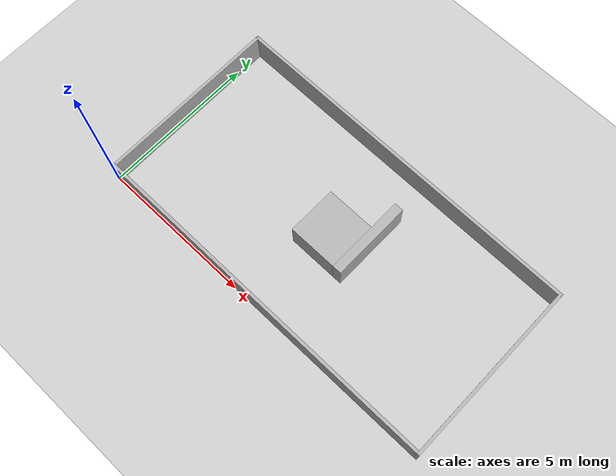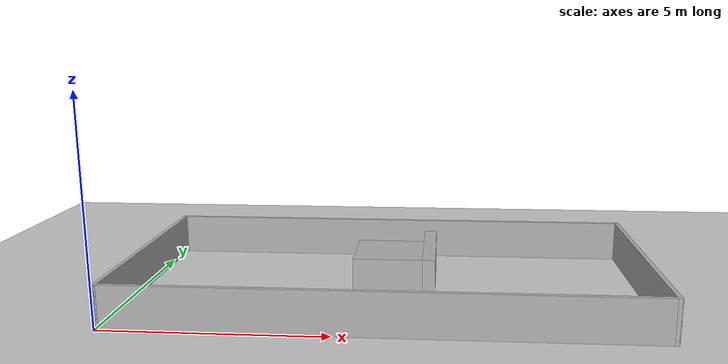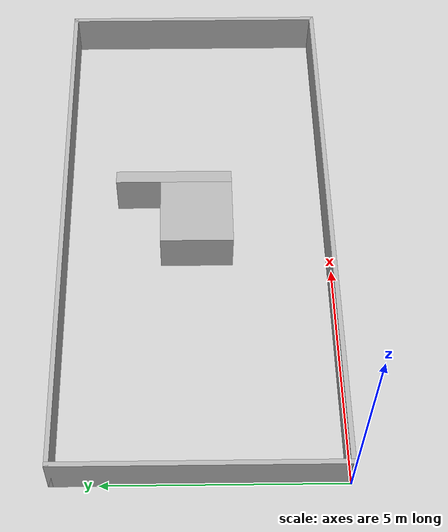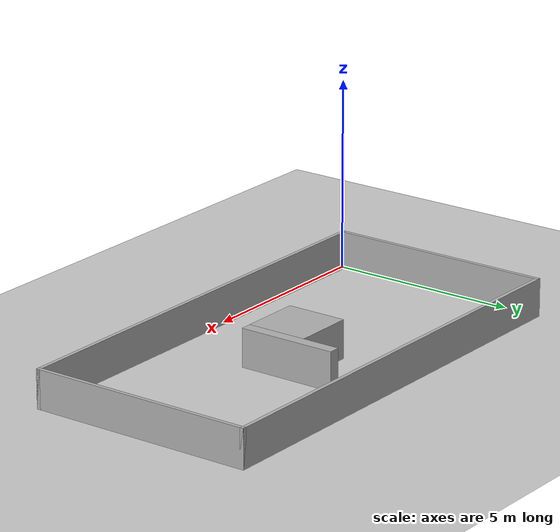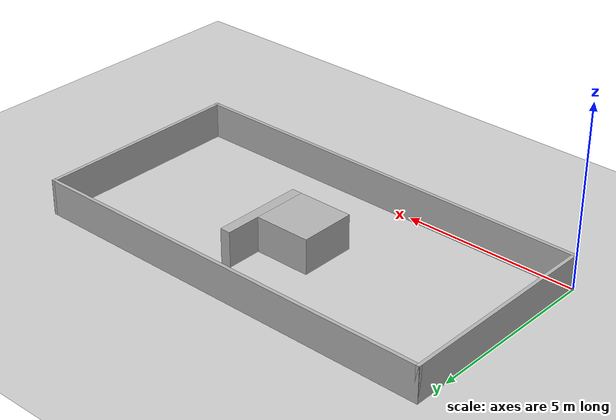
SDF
<?xml version="1.0" ?>
<sdf version="1.7">
  <world name="blockage">
    <gravity>0 0 -9.8</gravity>
    <include><uri>model://ground_plane</uri></include>
    <include><uri>model://sun</uri></include>

    <model name="box_0"><static>true</static><pose>6.000 0.050 0.500 0 0 0</pose><link name="link"><collision name="collision"><geometry><box><size>12.000 0.100 1.000</size></box></geometry></collision><visual name="visual"><geometry><box><size>12.000 0.100 1.000</size></box></geometry><material><ambient>0.7 0.7 0.7 1</ambient><diffuse>0.7 0.7 0.7 1</diffuse></material></visual></link></model>
    <model name="box_1"><static>true</static><pose>6.000 5.950 0.500 0 0 0</pose><link name="link"><collision name="collision"><geometry><box><size>12.000 0.100 1.000</size></box></geometry></collision><visual name="visual"><geometry><box><size>12.000 0.100 1.000</size></box></geometry><material><ambient>0.7 0.7 0.7 1</ambient><diffuse>0.7 0.7 0.7 1</diffuse></material></visual></link></model>
    <model name="box_2"><static>true</static><pose>0.050 3.000 0.500 0 0 0</pose><link name="link"><collision name="collision"><geometry><box><size>0.100 6.000 1.000</size></box></geometry></collision><visual name="visual"><geometry><box><size>0.100 6.000 1.000</size></box></geometry><material><ambient>0.7 0.7 0.7 1</ambient><diffuse>0.7 0.7 0.7 1</diffuse></material></visual></link></model>
    <model name="box_3"><static>true</static><pose>11.950 3.000 0.500 0 0 0</pose><link name="link"><collision name="collision"><geometry><box><size>0.100 6.000 1.000</size></box></geometry></collision><visual name="visual"><geometry><box><size>0.100 6.000 1.000</size></box></geometry><material><ambient>0.7 0.7 0.7 1</ambient><diffuse>0.7 0.7 0.7 1</diffuse></material></visual></link></model>
    <model name="box_4"><static>true</static><pose>6.000 3.000 0.500 0 0 0</pose><link name="link"><collision name="collision"><geometry><box><size>1.600 1.600 1.000</size></box></geometry></collision><visual name="visual"><geometry><box><size>1.600 1.600 1.000</size></box></geometry><material><ambient>0.7 0.7 0.7 1</ambient><diffuse>0.7 0.7 0.7 1</diffuse></material></visual></link></model>
    <model name="box_5"><static>true</static><pose>6.950 3.500 0.500 0 0 0</pose><link name="link"><collision name="collision"><geometry><box><size>0.300 2.600 1.000</size></box></geometry></collision><visual name="visual"><geometry><box><size>0.300 2.600 1.000</size></box></geometry><material><ambient>0.7 0.7 0.7 1</ambient><diffuse>0.7 0.7 0.7 1</diffuse></material></visual></link></model>

    <model name="dynamic_blocker">
      <static>false</static>
      <pose>6.100 3.000 0.450 0 0 1.57079632679</pose>
      <link name="body">
        <inertial>
          <mass>5.0</mass>
          <inertia>
            <ixx>0.25</ixx><ixy>0.0</ixy><ixz>0.0</ixz>
            <iyy>0.25</iyy><iyz>0.0</iyz>
            <izz>0.25</izz>
          </inertia>
        </inertial>
        <collision name="collision"><geometry><box><size>0.40 0.80 0.90</size></box></geometry></collision>
        <visual name="visual"><geometry><box><size>0.40 0.80 0.90</size></box></geometry><material><ambient>0.8 0.2 0.2 1</ambient><diffuse>0.8 0.2 0.2 1</diffuse></material></visual>
      </link>
      <plugin name="dynamic_blocker_planar_move" filename="libgazebo_ros_planar_move.so">
        <ros>
          <namespace>/dynamic_blocker</namespace>
          <remapping>cmd_vel:=cmd_vel</remapping>
        </ros>
        <publish_rate>20.0</publish_rate>
        <publish_odom>false</publish_odom>
        <publish_odom_tf>false</publish_odom_tf>
        <commandTopic>cmd_vel</commandTopic>
      </plugin>
    </model>
  </world>
</sdf>
